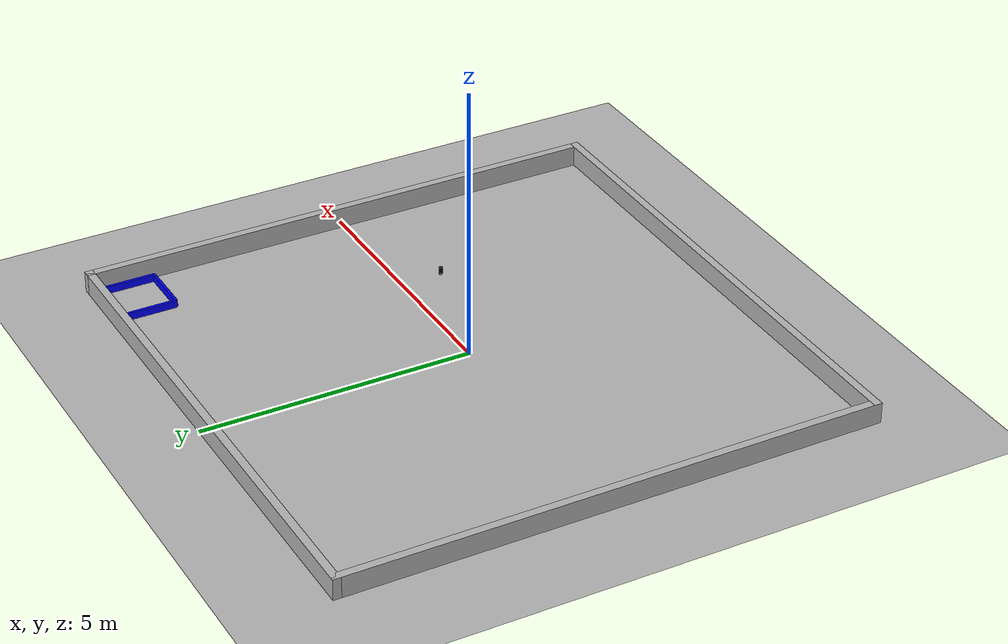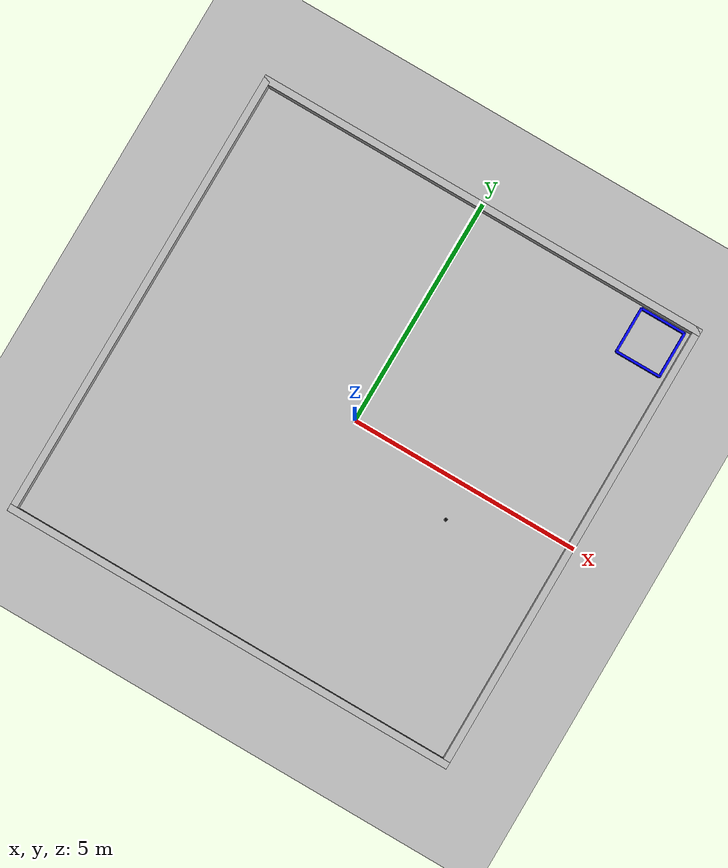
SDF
<sdf version="1.9">
 <world name="default">
  <model name="ground_plane">
   <static>true</static>
   <link name="link">
    <collision name="collision">
     <geometry><plane><normal>0 0 1</normal><size>100 100</size></plane></geometry>
     <surface>
      <contact><collide_bitmask>65535</collide_bitmask></contact>
      <friction><ode><mu>100</mu><mu2>50</mu2></ode></friction>
     </surface>
    </collision>
    <visual name="visual">
     <cast_shadows>false</cast_shadows>
     <geometry><plane><normal>0 0 1</normal><size>100 100</size></plane></geometry>
     <material>
      <ambient>0.3 0.3 0.3 1</ambient>
      <diffuse>0.7 0.7 0.7 1</diffuse>
      <specular>0.01 0.01 0.01 1</specular>
     </material>
    </visual>
    <inertial>
     <mass>1</mass>
     <inertia><ixx>1</ixx><ixy>0</ixy><ixz>0</ixz><iyy>1</iyy><iyz>0</iyz><izz>1</izz></inertia>
    </inertial>
   </link>
  </model>
  <model name="arena">
   <link name="Wall_5">
    <collision name="Wall_5_Collision"><geometry><box><size>10 0.15 0.75</size></box></geometry></collision>
    <visual name="Wall_5_Visual">
     <geometry><box><size>10 0.15 0.75</size></box></geometry>
     <material>
      <ambient>0.3 0.3 0.3 1</ambient>
      <diffuse>0.7 0.7 0.7 1</diffuse>
      <specular>0.01 0.01 0.01 1</specular>
     </material>
     <meta><layer>0</layer></meta>
    </visual>
    <pose>0 -4.925 0 0 -0 0</pose>
    <inertial>
     <mass>1</mass>
     <inertia><ixx>1</ixx><ixy>0</ixy><ixz>0</ixz><iyy>1</iyy><iyz>0</iyz><izz>1</izz></inertia>
    </inertial>
   </link>
   <link name="Wall_6">
    <collision name="Wall_6_Collision"><geometry><box><size>10 0.15 0.75</size></box></geometry></collision>
    <visual name="Wall_6_Visual">
     <geometry><box><size>10 0.15 0.75</size></box></geometry>
     <material>
      <ambient>0.3 0.3 0.3 1</ambient>
      <diffuse>0.7 0.7 0.7 1</diffuse>
      <specular>0.01 0.01 0.01 1</specular>
     </material>
     <meta><layer>0</layer></meta>
    </visual>
    <pose>4.925 0 0 0 -0 1.5708</pose>
    <inertial>
     <mass>1</mass>
     <inertia><ixx>1</ixx><ixy>0</ixy><ixz>0</ixz><iyy>1</iyy><iyz>0</iyz><izz>1</izz></inertia>
    </inertial>
   </link>
   <link name="Wall_7">
    <collision name="Wall_7_Collision"><geometry><box><size>10 0.15 0.75</size></box></geometry></collision>
    <visual name="Wall_7_Visual">
     <geometry><box><size>10 0.15 0.75</size></box></geometry>
     <material>
      <ambient>0.3 0.3 0.3 1</ambient>
      <diffuse>0.7 0.7 0.7 1</diffuse>
      <specular>0.01 0.01 0.01 1</specular>
     </material>
     <meta><layer>0</layer></meta>
    </visual>
    <pose>0 4.925 0 0 -0 3.14159</pose>
    <inertial>
     <mass>1</mass>
     <inertia><ixx>1</ixx><ixy>0</ixy><ixz>0</ixz><iyy>1</iyy><iyz>0</iyz><izz>1</izz></inertia>
    </inertial>
   </link>
   <link name="Wall_8">
    <collision name="Wall_8_Collision"><geometry><box><size>10 0.15 0.75</size></box></geometry></collision>
    <visual name="Wall_8_Visual">
     <geometry><box><size>10 0.15 0.75</size></box></geometry>
     <material>
      <ambient>0.3 0.3 0.3 1</ambient>
      <diffuse>0.7 0.7 0.7 1</diffuse>
      <specular>0.01 0.01 0.01 1</specular>
     </material>
     <meta><layer>0</layer></meta>
    </visual>
    <pose>-4.925 0 0 0 0 -1.5708</pose>
    <inertial>
     <mass>1</mass>
     <inertia><ixx>1</ixx><ixy>0</ixy><ixz>0</ixz><iyy>1</iyy><iyz>0</iyz><izz>1</izz></inertia>
    </inertial>
   </link>
   <static>true</static>
  </model>
  <model name="dropoff">
   <pose>4.25 3.8 0 0 -0 0</pose>
   <link name="Wall_0">
    <collision name="Wall_5_Collision"><geometry><box><size>1 0.05 0.25</size></box></geometry></collision>
    <visual name="Wall_5_Visual">
     <geometry><box><size>1 0.05 0.25</size></box></geometry>
     <material><ambient>0 0 1 1</ambient><diffuse>0 0 1 1</diffuse><specular>0.1 0.1 0.1 1</specular></material>
     <meta><layer>0</layer></meta>
    </visual>
    <inertial>
     <mass>1</mass>
     <inertia><ixx>1</ixx><ixy>0</ixy><ixz>0</ixz><iyy>1</iyy><iyz>0</iyz><izz>1</izz></inertia>
    </inertial>
   </link>
   <link name="Wall_6">
    <collision name="Wall_6_Collision">
     <geometry><box><size>1 0.05 0.25</size></box></geometry>
     <pose>0 0 1.25 0 -0 0</pose>
    </collision>
    <visual name="Wall_6_Visual">
     <geometry><box><size>1 0.05 0.25</size></box></geometry>
     <material><ambient>0 0 1 1</ambient><diffuse>0 0 1 1</diffuse><specular>0.1 0.1 0.1 1</specular></material>
     <meta><layer>0</layer></meta>
    </visual>
    <pose>0.4925 0.4925 0 0 -0 1.5708</pose>
    <inertial>
     <mass>1</mass>
     <inertia><ixx>1</ixx><ixy>0</ixy><ixz>0</ixz><iyy>1</iyy><iyz>0</iyz><izz>1</izz></inertia>
    </inertial>
   </link>
   <link name="Wall_7">
    <collision name="Wall_7_Collision"><geometry><box><size>1 0.05 0.25</size></box></geometry></collision>
    <visual name="Wall_7_Visual">
     <geometry><box><size>1 0.05 0.25</size></box></geometry>
     <material><ambient>0 0 1 1</ambient><diffuse>0 0 1 1</diffuse><specular>0.1 0.1 0.1 1</specular></material>
     <meta><layer>0</layer></meta>
    </visual>
    <pose>0 0.9925 0 0 -0 3.14159</pose>
    <inertial>
     <mass>1</mass>
     <inertia><ixx>1</ixx><ixy>0</ixy><ixz>0</ixz><iyy>1</iyy><iyz>0</iyz><izz>1</izz></inertia>
    </inertial>
   </link>
   <link name="Wall_8">
    <collision name="Wall_8_Collision">
     <geometry><box><size>1 0.05 0.25</size></box></geometry>
     <pose>0 0 1.25 0 -0 0</pose>
    </collision>
    <visual name="Wall_8_Visual">
     <geometry><box><size>1 0.05 0.25</size></box></geometry>
     <material><ambient>0 0 1 1</ambient><diffuse>0 0 1 1</diffuse><specular>0.1 0.1 0.1 1</specular></material>
     <meta><layer>0</layer></meta>
    </visual>
    <pose>-0.4925 0.4925 0 0 -0 1.5708</pose>
    <inertial>
     <mass>1</mass>
     <inertia><ixx>1</ixx><ixy>0</ixy><ixz>0</ixz><iyy>1</iyy><iyz>0</iyz><izz>1</izz></inertia>
    </inertial>
   </link>
   <static>true</static>
  </model>
  <model name="light_1">
   <pose>2.528803968862025 -0.7812189479296932 0 0 0 0</pose>
   <static>false</static>
   <link name="base">
    <pose>0.0 0.0 0.02 0.0 0 0</pose>
    <collision name="collision">
     <geometry><cylinder><radius>.035</radius><length>.04</length></cylinder></geometry>
    </collision>
    <inertial>
     <mass>10</mass>
     <inertia>
      <ixx>0.004395833333333333</ixx>
      <ixy>0.0</ixy>
      <ixz>0.0</ixz>
      <iyy>0.004395833333333333</iyy>
      <iyz>0.0</iyz>
      <izz>0.006125</izz>
     </inertia>
    </inertial>
    <visual name="visual">
     <geometry><cylinder><radius>.035</radius><length>.04</length></cylinder></geometry>
     <material>
      <ambient>0.4 0.4 0.4 1</ambient>
      <diffuse>0.4 0.4 0.4 1</diffuse>
      <specular>0.4 0.4 0.4 0</specular>
      <emissive>0.6 0.6 0.4 1</emissive>
     </material>
     <plugin filename="ignition-gazebo-label-system" name="ignition::gazebo::systems::Label">
      <label>10</label>
     </plugin>
    </visual>
   </link>
   <link name="light">
    <pose>0 0. 0.09 0 0 0</pose>
    <collision name="collision">
     <geometry><cylinder><radius>.035</radius><length>.1</length></cylinder></geometry>
    </collision>
    <inertial>
     <mass>10</mass>
     <inertia>
      <ixx>0.01139583333333333</ixx>
      <ixy>0.0</ixy>
      <ixz>0.0</ixz>
      <iyy>0.01139583333333333</iyy>
      <iyz>0.0</iyz>
      <izz>0.006125</izz>
     </inertia>
    </inertial>
    <visual name="visual">
     <geometry><cylinder><radius>.035</radius><length>.1</length></cylinder></geometry>
     <material>
      <ambient>0 0 0 1</ambient>
      <diffuse>0 0 0 1</diffuse>
      <specular>0 0 0 0</specular>
      <emissive>1 0.5 0 1</emissive>
     </material>
     <plugin filename="ignition-gazebo-label-system" name="ignition::gazebo::systems::Label">
      <label>10</label>
     </plugin>
    </visual>
   </link>
   <visual name="visual">
    <plugin filename="ignition-gazebo-label-system" name="ignition::gazebo::systems::Label">
     <label>10</label>
    </plugin>
   </visual>
   <joint name="light_joint" type="fixed">
    <pose>0 0 -0.05 .0 0 0</pose>
    <child>light</child>
    <parent>base</parent>
   </joint>
  </model>
 </world>
</sdf>
